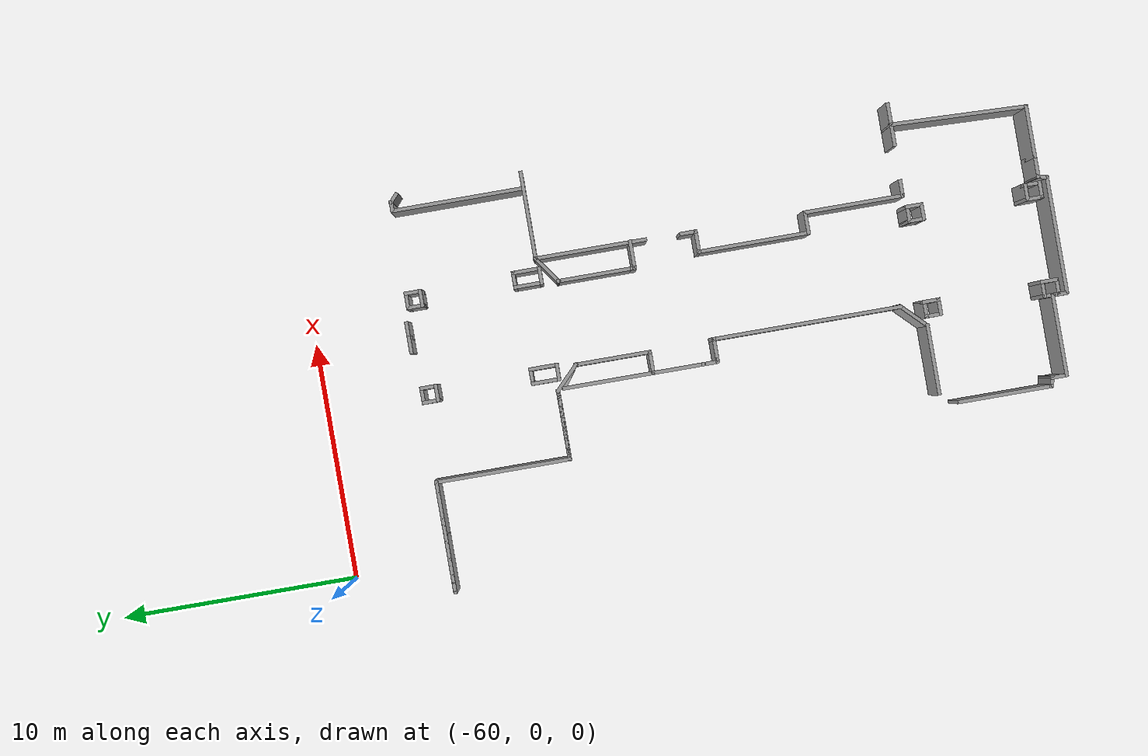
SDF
<sdf version="1.7">
 <model name="TD_n1">
  <pose>-6.74052 -9.30399 0 0 -0 0</pose>
  <link name="Wall_0">
   <collision name="Wall_0_Collision">
    <geometry><box><size>4.75 0.15 2.5</size></box></geometry>
    <pose>0 0 1.25 0 -0 0</pose>
   </collision>
   <visual name="Wall_0_Visual">
    <pose>0 0 1.25 0 -0 0</pose>
    <geometry><box><size>4.75 0.15 2.5</size></box></geometry>
    <material>
     <script><uri>file://media/materials/scripts/gazebo.material</uri><name>Gazebo/Grey</name></script>
     <ambient>1 1 1 1</ambient>
    </material>
    <meta><layer>0</layer></meta>
   </visual>
   <pose>-41.3567 -2.77844 0 0 -0 -1.5708</pose>
  </link>
  <link name="Wall_10">
   <collision name="Wall_10_Collision">
    <geometry><box><size>1 0.15 2.5</size></box></geometry>
    <pose>0 0 1.25 0 -0 0</pose>
   </collision>
   <visual name="Wall_10_Visual">
    <pose>0 0 1.25 0 -0 0</pose>
    <geometry><box><size>1 0.15 2.5</size></box></geometry>
    <material>
     <script><uri>file://media/materials/scripts/gazebo.material</uri><name>Gazebo/Grey</name></script>
     <ambient>1 1 1 1</ambient>
    </material>
    <meta><layer>0</layer></meta>
   </visual>
   <pose>-38.8303 -15.9332 0 0 -0 0</pose>
  </link>
  <link name="Wall_100">
   <collision name="Wall_100_Collision">
    <geometry><box><size>0.5 0.15 2.5</size></box></geometry>
    <pose>0 0 1.25 0 -0 0</pose>
   </collision>
   <visual name="Wall_100_Visual">
    <pose>0 0 1.25 0 -0 0</pose>
    <geometry><box><size>0.5 0.15 2.5</size></box></geometry>
    <material>
     <script><uri>file://media/materials/scripts/gazebo.material</uri><name>Gazebo/Grey</name></script>
     <ambient>1 1 1 1</ambient>
    </material>
    <meta><layer>0</layer></meta>
   </visual>
   <pose>-41.6133 -21.735 0 0 -0 1.309</pose>
  </link>
  <link name="Wall_101">
   <collision name="Wall_101_Collision">
    <geometry><box><size>1 0.15 2.5</size></box></geometry>
    <pose>0 0 1.25 0 -0 0</pose>
   </collision>
   <visual name="Wall_101_Visual">
    <pose>0 0 1.25 0 -0 0</pose>
    <geometry><box><size>1 0.15 2.5</size></box></geometry>
    <material>
     <script><uri>file://media/materials/scripts/gazebo.material</uri><name>Gazebo/Grey</name></script>
     <ambient>1 1 1 1</ambient>
    </material>
    <meta><layer>0</layer></meta>
   </visual>
   <pose>-41.143 -21.5659 0 0 -0 0</pose>
  </link>
  <link name="Wall_103">
   <collision name="Wall_103_Collision">
    <geometry><box><size>2.25 0.15 2.5</size></box></geometry>
    <pose>0 0 1.25 0 -0 0</pose>
   </collision>
   <visual name="Wall_103_Visual">
    <pose>0 0 1.25 0 -0 0</pose>
    <geometry><box><size>2.25 0.15 2.5</size></box></geometry>
    <material>
     <script><uri>file://media/materials/scripts/gazebo.material</uri><name>Gazebo/Grey</name></script>
     <ambient>1 1 1 1</ambient>
    </material>
    <meta><layer>0</layer></meta>
   </visual>
   <pose>-39.668 -21.5659 0 0 -0 0</pose>
  </link>
  <link name="Wall_104">
   <collision name="Wall_104_Collision">
    <geometry><box><size>5.78677 0.15 2.5</size></box></geometry>
    <pose>0 0 1.25 0 -0 0</pose>
   </collision>
   <visual name="Wall_104_Visual">
    <pose>0 0 1.25 0 -0 0</pose>
    <geometry><box><size>5.78677 0.15 2.5</size></box></geometry>
    <material>
     <script><uri>file://media/materials/scripts/gazebo.material</uri><name>Gazebo/Grey</name></script>
     <ambient>1 1 1 1</ambient>
    </material>
    <meta><layer>0</layer></meta>
   </visual>
   <pose>-38.5116 -18.7495 0 0 -0 1.53305</pose>
  </link>
  <link name="Wall_106">
   <collision name="Wall_106_Collision">
    <geometry><box><size>3 0.15 2.5</size></box></geometry>
    <pose>0 0 1.25 0 -0 0</pose>
   </collision>
   <visual name="Wall_106_Visual">
    <pose>0 0 1.25 0 -0 0</pose>
    <geometry><box><size>3 0.15 2.5</size></box></geometry>
    <material>
     <script><uri>file://media/materials/scripts/gazebo.material</uri><name>Gazebo/Grey</name></script>
     <ambient>1 1 1 1</ambient>
    </material>
    <meta><layer>0</layer></meta>
   </visual>
   <pose>-48.3458 -0.459621 0 0 -0 3.14159</pose>
  </link>
  <link name="Wall_107">
   <collision name="Wall_107_Collision">
    <geometry><box><size>5.75 0.15 2.5</size></box></geometry>
    <pose>0 0 1.25 0 -0 0</pose>
   </collision>
   <visual name="Wall_107_Visual">
    <pose>0 0 1.25 0 -0 0</pose>
    <geometry><box><size>5.75 0.15 2.5</size></box></geometry>
    <material>
     <script><uri>file://media/materials/scripts/gazebo.material</uri><name>Gazebo/Grey</name></script>
     <ambient>1 1 1 1</ambient>
    </material>
    <meta><layer>0</layer></meta>
   </visual>
   <pose>-49.7708 2.34038 0 0 -0 1.5708</pose>
  </link>
  <link name="Wall_108">
   <collision name="Wall_108_Collision">
    <geometry><box><size>4.75 0.15 2.5</size></box></geometry>
    <pose>0 0 1.25 0 -0 0</pose>
   </collision>
   <visual name="Wall_108_Visual">
    <pose>0 0 1.25 0 -0 0</pose>
    <geometry><box><size>4.75 0.15 2.5</size></box></geometry>
    <material>
     <script><uri>file://media/materials/scripts/gazebo.material</uri><name>Gazebo/Grey</name></script>
     <ambient>1 1 1 1</ambient>
    </material>
    <meta><layer>0</layer></meta>
   </visual>
   <pose>-52.0708 5.14038 0 0 -0 3.14159</pose>
  </link>
  <link name="Wall_11">
   <collision name="Wall_11_Collision">
    <geometry><box><size>1 0.15 2.5</size></box></geometry>
    <pose>0 0 1.25 0 -0 0</pose>
   </collision>
   <visual name="Wall_11_Visual">
    <pose>0 0 1.25 0 -0 0</pose>
    <geometry><box><size>1 0.15 2.5</size></box></geometry>
    <material>
     <script><uri>file://media/materials/scripts/gazebo.material</uri><name>Gazebo/Grey</name></script>
     <ambient>1 1 1 1</ambient>
    </material>
    <meta><layer>0</layer></meta>
   </visual>
   <pose>-37.9803 -15.9332 0 0 -0 0</pose>
  </link>
  <link name="Wall_111">
   <collision name="Wall_111_Collision">
    <geometry><box><size>4.75 0.15 2.5</size></box></geometry>
    <pose>0 0 1.25 0 -0 0</pose>
   </collision>
   <visual name="Wall_111_Visual">
    <pose>0 0 1.25 0 -0 0</pose>
    <geometry><box><size>4.75 0.15 2.5</size></box></geometry>
    <material>
     <script><uri>file://media/materials/scripts/gazebo.material</uri><name>Gazebo/Grey</name></script>
     <ambient>1 1 1 1</ambient>
    </material>
    <meta><layer>0</layer></meta>
   </visual>
   <pose>-52.0708 5.14038 0 0 -0 0</pose>
  </link>
  <link name="Wall_132">
   <collision name="Wall_132_Collision">
    <geometry><box><size>5.5 0.15 2.5</size></box></geometry>
    <pose>0 0 1.25 0 -0 0</pose>
   </collision>
   <visual name="Wall_132_Visual">
    <pose>0 0 1.25 0 -0 0</pose>
    <geometry><box><size>5.5 0.15 2.5</size></box></geometry>
    <material>
     <script><uri>file://media/materials/scripts/gazebo.material</uri><name>Gazebo/Grey</name></script>
     <ambient>1 1 1 1</ambient>
    </material>
    <meta><layer>0</layer></meta>
   </visual>
   <pose>-38.4036 2.3442 0 0 -0 1.5708</pose>
  </link>
  <link name="Wall_133">
   <collision name="Wall_133_Collision">
    <geometry><box><size>0.5 0.15 2.5</size></box></geometry>
    <pose>0 0 1.25 0 -0 0</pose>
   </collision>
   <visual name="Wall_133_Visual">
    <pose>0 0 1.25 0 -0 0</pose>
    <geometry><box><size>0.5 0.15 2.5</size></box></geometry>
    <material>
     <script><uri>file://media/materials/scripts/gazebo.material</uri><name>Gazebo/Grey</name></script>
     <ambient>1 1 1 1</ambient>
    </material>
    <meta><layer>0</layer></meta>
   </visual>
   <pose>-38.2286 5.0192 0 0 -0 0</pose>
  </link>
  <link name="Wall_134">
   <collision name="Wall_134_Collision">
    <geometry><box><size>0.546055 0.15 2.5</size></box></geometry>
    <pose>0 0 1.25 0 -0 0</pose>
   </collision>
   <visual name="Wall_134_Visual">
    <pose>0 0 1.25 0 -0 0</pose>
    <geometry><box><size>0.546055 0.15 2.5</size></box></geometry>
    <material>
     <script><uri>file://media/materials/scripts/gazebo.material</uri><name>Gazebo/Grey</name></script>
     <ambient>1 1 1 1</ambient>
    </material>
    <meta><layer>0</layer></meta>
   </visual>
   <pose>-37.9048 4.88857 0 0 -0 -0.720381</pose>
  </link>
  <link name="Wall_136">
   <collision name="Wall_136_Collision">
    <geometry><box><size>0.75 0.15 2.5</size></box></geometry>
    <pose>0 0 1.25 0 -0 0</pose>
   </collision>
   <visual name="Wall_136_Visual">
    <pose>0 0 1.25 0 -0 0</pose>
    <geometry><box><size>0.75 0.15 2.5</size></box></geometry>
    <material>
     <script><uri>file://media/materials/scripts/gazebo.material</uri><name>Gazebo/Grey</name></script>
     <ambient>1 1 1 1</ambient>
    </material>
    <meta><layer>0</layer></meta>
   </visual>
   <pose>-43.9857 5.24413 0 0 -0 0</pose>
  </link>
  <link name="Wall_137">
   <collision name="Wall_137_Collision">
    <geometry><box><size>0.75 0.15 2.5</size></box></geometry>
    <pose>0 0 1.25 0 -0 0</pose>
   </collision>
   <visual name="Wall_137_Visual">
    <pose>0 0 1.25 0 -0 0</pose>
    <geometry><box><size>0.75 0.15 2.5</size></box></geometry>
    <material>
     <script><uri>file://media/materials/scripts/gazebo.material</uri><name>Gazebo/Grey</name></script>
     <ambient>1 1 1 1</ambient>
    </material>
    <meta><layer>0</layer></meta>
   </visual>
   <pose>-43.3857 5.24413 0 0 -0 0</pose>
  </link>
  <link name="Wall_2">
   <collision name="Wall_2_Collision">
    <geometry><box><size>0.75 0.15 2.5</size></box></geometry>
    <pose>0 0 1.25 0 -0 0</pose>
   </collision>
   <visual name="Wall_2_Visual">
    <pose>0 0 1.25 0 -0 0</pose>
    <geometry><box><size>0.75 0.15 2.5</size></box></geometry>
    <material>
     <script><uri>file://media/materials/scripts/gazebo.material</uri><name>Gazebo/Grey</name></script>
     <ambient>1 1 1 1</ambient>
    </material>
    <meta><layer>0</layer></meta>
   </visual>
   <pose>-41.3833 -6.89649 0 0 -0 -1.5708</pose>
  </link>
  <link name="Wall_214">
   <collision name="Wall_214_Collision">
    <geometry><box><size>0.75 0.15 2.5</size></box></geometry>
    <pose>0 0 1.25 0 -0 0</pose>
   </collision>
   <visual name="Wall_214_Visual">
    <pose>0 0 1.25 0 -0 0</pose>
    <geometry><box><size>0.75 0.15 2.5</size></box></geometry>
    <material>
     <script><uri>file://media/materials/scripts/gazebo.material</uri><name>Gazebo/Grey</name></script>
     <ambient>1 1 1 1</ambient>
    </material>
    <meta><layer>0</layer></meta>
   </visual>
   <pose>-46.4455 4.79139 0 0 -0 -1.5708</pose>
  </link>
  <link name="Wall_215">
   <collision name="Wall_215_Collision">
    <geometry><box><size>0.75 0.15 2.5</size></box></geometry>
    <pose>0 0 1.25 0 -0 0</pose>
   </collision>
   <visual name="Wall_215_Visual">
    <pose>0 0 1.25 0 -0 0</pose>
    <geometry><box><size>0.75 0.15 2.5</size></box></geometry>
    <material>
     <script><uri>file://media/materials/scripts/gazebo.material</uri><name>Gazebo/Grey</name></script>
     <ambient>1 1 1 1</ambient>
    </material>
    <meta><layer>0</layer></meta>
   </visual>
   <pose>-46.1455 4.49139 0 0 -0 0</pose>
  </link>
  <link name="Wall_216">
   <collision name="Wall_216_Collision">
    <geometry><box><size>0.75 0.15 2.5</size></box></geometry>
    <pose>0 0 1.25 0 -0 0</pose>
   </collision>
   <visual name="Wall_216_Visual">
    <pose>0 0 1.25 0 -0 0</pose>
    <geometry><box><size>0.75 0.15 2.5</size></box></geometry>
    <material>
     <script><uri>file://media/materials/scripts/gazebo.material</uri><name>Gazebo/Grey</name></script>
     <ambient>1 1 1 1</ambient>
    </material>
    <meta><layer>0</layer></meta>
   </visual>
   <pose>-45.8455 4.79139 0 0 -0 1.5708</pose>
  </link>
  <link name="Wall_217">
   <collision name="Wall_217_Collision">
    <geometry><box><size>0.75 0.15 2.5</size></box></geometry>
    <pose>0 0 1.25 0 -0 0</pose>
   </collision>
   <visual name="Wall_217_Visual">
    <pose>0 0 1.25 0 -0 0</pose>
    <geometry><box><size>0.75 0.15 2.5</size></box></geometry>
    <material>
     <script><uri>file://media/materials/scripts/gazebo.material</uri><name>Gazebo/Grey</name></script>
     <ambient>1 1 1 1</ambient>
    </material>
    <meta><layer>0</layer></meta>
   </visual>
   <pose>-46.1455 5.09139 0 0 -0 3.14159</pose>
  </link>
  <link name="Wall_219">
   <collision name="Wall_219_Collision">
    <geometry><box><size>0.75 0.15 2.5</size></box></geometry>
    <pose>0 0 1.25 0 -0 0</pose>
   </collision>
   <visual name="Wall_219_Visual">
    <pose>0 0 1.25 0 -0 0</pose>
    <geometry><box><size>0.75 0.15 2.5</size></box></geometry>
    <material>
     <script><uri>file://media/materials/scripts/gazebo.material</uri><name>Gazebo/Grey</name></script>
     <ambient>1 1 1 1</ambient>
    </material>
    <meta><layer>0</layer></meta>
   </visual>
   <pose>-42.4682 4.76115 0 0 -0 -1.5708</pose>
  </link>
  <link name="Wall_220">
   <collision name="Wall_220_Collision">
    <geometry><box><size>0.75 0.15 2.5</size></box></geometry>
    <pose>0 0 1.25 0 -0 0</pose>
   </collision>
   <visual name="Wall_220_Visual">
    <pose>0 0 1.25 0 -0 0</pose>
    <geometry><box><size>0.75 0.15 2.5</size></box></geometry>
    <material>
     <script><uri>file://media/materials/scripts/gazebo.material</uri><name>Gazebo/Grey</name></script>
     <ambient>1 1 1 1</ambient>
    </material>
    <meta><layer>0</layer></meta>
   </visual>
   <pose>-42.1682 4.46115 0 0 -0 0</pose>
  </link>
  <link name="Wall_221">
   <collision name="Wall_221_Collision">
    <geometry><box><size>0.75 0.15 2.5</size></box></geometry>
    <pose>0 0 1.25 0 -0 0</pose>
   </collision>
   <visual name="Wall_221_Visual">
    <pose>0 0 1.25 0 -0 0</pose>
    <geometry><box><size>0.75 0.15 2.5</size></box></geometry>
    <material>
     <script><uri>file://media/materials/scripts/gazebo.material</uri><name>Gazebo/Grey</name></script>
     <ambient>1 1 1 1</ambient>
    </material>
    <meta><layer>0</layer></meta>
   </visual>
   <pose>-41.8682 4.76115 0 0 -0 1.5708</pose>
  </link>
  <link name="Wall_222">
   <collision name="Wall_222_Collision">
    <geometry><box><size>0.75 0.15 2.5</size></box></geometry>
    <pose>0 0 1.25 0 -0 0</pose>
   </collision>
   <visual name="Wall_222_Visual">
    <pose>0 0 1.25 0 -0 0</pose>
    <geometry><box><size>0.75 0.15 2.5</size></box></geometry>
    <material>
     <script><uri>file://media/materials/scripts/gazebo.material</uri><name>Gazebo/Grey</name></script>
     <ambient>1 1 1 1</ambient>
    </material>
    <meta><layer>0</layer></meta>
   </visual>
   <pose>-42.1682 5.06115 0 0 -0 3.14159</pose>
  </link>
  <link name="Wall_3">
   <collision name="Wall_3_Collision">
    <geometry><box><size>1 0.15 2.5</size></box></geometry>
    <pose>0 0 1.25 0 -0 0</pose>
   </collision>
   <visual name="Wall_3_Visual">
    <pose>0 0 1.25 0 -0 0</pose>
    <geometry><box><size>1 0.15 2.5</size></box></geometry>
    <material>
     <script><uri>file://media/materials/scripts/gazebo.material</uri><name>Gazebo/Grey</name></script>
     <ambient>1 1 1 1</ambient>
    </material>
    <meta><layer>0</layer></meta>
   </visual>
   <pose>-41.8083 -7.19649 0 0 -0 3.14159</pose>
  </link>
  <link name="Wall_31">
   <collision name="Wall_31_Collision">
    <geometry><box><size>3.75 0.15 2.5</size></box></geometry>
    <pose>0 0 1.25 0 -0 0</pose>
   </collision>
   <visual name="Wall_31_Visual">
    <pose>0 0 1.25 0 -0 0</pose>
    <geometry><box><size>3.75 0.15 2.5</size></box></geometry>
    <material>
     <script><uri>file://media/materials/scripts/gazebo.material</uri><name>Gazebo/Grey</name></script>
     <ambient>1 1 1 1</ambient>
    </material>
    <meta><layer>0</layer></meta>
   </visual>
   <pose>-39.5567 -0.478441 0 0 -0 0</pose>
  </link>
  <link name="Wall_4">
   <collision name="Wall_4_Collision">
    <geometry><box><size>4.75 0.15 2.5</size></box></geometry>
    <pose>0 0 1.25 0 -0 0</pose>
   </collision>
   <visual name="Wall_4_Visual">
    <pose>0 0 1.25 0 -0 0</pose>
    <geometry><box><size>4.75 0.15 2.5</size></box></geometry>
    <material>
     <script><uri>file://media/materials/scripts/gazebo.material</uri><name>Gazebo/Grey</name></script>
     <ambient>1 1 1 1</ambient>
    </material>
    <meta><layer>0</layer></meta>
   </visual>
   <pose>-42.2333 -9.49649 0 0 -0 -1.5708</pose>
  </link>
  <link name="Wall_41">
   <collision name="Wall_41_Collision">
    <geometry><box><size>0.75 0.15 2.5</size></box></geometry>
    <pose>0 0 1.25 0 -0 0</pose>
   </collision>
   <visual name="Wall_41_Visual">
    <pose>0 0 1.25 0 -0 0</pose>
    <geometry><box><size>0.75 0.15 2.5</size></box></geometry>
    <material>
     <script><uri>file://media/materials/scripts/gazebo.material</uri><name>Gazebo/Grey</name></script>
     <ambient>1 1 1 1</ambient>
    </material>
    <meta><layer>0</layer></meta>
   </visual>
   <pose>-42.4753 -16.298 0 0 -0 -1.5708</pose>
  </link>
  <link name="Wall_42">
   <collision name="Wall_42_Collision">
    <geometry><box><size>0.75 0.15 2.5</size></box></geometry>
    <pose>0 0 1.25 0 -0 0</pose>
   </collision>
   <visual name="Wall_42_Visual">
    <pose>0 0 1.25 0 -0 0</pose>
    <geometry><box><size>0.75 0.15 2.5</size></box></geometry>
    <material>
     <script><uri>file://media/materials/scripts/gazebo.material</uri><name>Gazebo/Grey</name></script>
     <ambient>1 1 1 1</ambient>
    </material>
    <meta><layer>0</layer></meta>
   </visual>
   <pose>-42.1754 -16.598 0 0 -0 0</pose>
  </link>
  <link name="Wall_43">
   <collision name="Wall_43_Collision">
    <geometry><box><size>0.75 0.15 2.5</size></box></geometry>
    <pose>0 0 1.25 0 -0 0</pose>
   </collision>
   <visual name="Wall_43_Visual">
    <pose>0 0 1.25 0 -0 0</pose>
    <geometry><box><size>0.75 0.15 2.5</size></box></geometry>
    <material>
     <script><uri>file://media/materials/scripts/gazebo.material</uri><name>Gazebo/Grey</name></script>
     <ambient>1 1 1 1</ambient>
    </material>
    <meta><layer>0</layer></meta>
   </visual>
   <pose>-41.8753 -16.298 0 0 -0 1.5708</pose>
  </link>
  <link name="Wall_44">
   <collision name="Wall_44_Collision">
    <geometry><box><size>0.75 0.15 2.5</size></box></geometry>
    <pose>0 0 1.25 0 -0 0</pose>
   </collision>
   <visual name="Wall_44_Visual">
    <pose>0 0 1.25 0 -0 0</pose>
    <geometry><box><size>0.75 0.15 2.5</size></box></geometry>
    <material>
     <script><uri>file://media/materials/scripts/gazebo.material</uri><name>Gazebo/Grey</name></script>
     <ambient>1 1 1 1</ambient>
    </material>
    <meta><layer>0</layer></meta>
   </visual>
   <pose>-42.1754 -15.998 0 0 -0 3.14159</pose>
  </link>
  <link name="Wall_46">
   <collision name="Wall_46_Collision">
    <geometry><box><size>0.75 0.15 2.5</size></box></geometry>
    <pose>0 0 1.25 0 -0 0</pose>
   </collision>
   <visual name="Wall_46_Visual">
    <pose>0 0 1.25 0 -0 0</pose>
    <geometry><box><size>0.75 0.15 2.5</size></box></geometry>
    <material>
     <script><uri>file://media/materials/scripts/gazebo.material</uri><name>Gazebo/Grey</name></script>
     <ambient>1 1 1 1</ambient>
    </material>
    <meta><layer>0</layer></meta>
   </visual>
   <pose>-46.4753 -16.3133 0 0 -0 -1.5708</pose>
  </link>
  <link name="Wall_47">
   <collision name="Wall_47_Collision">
    <geometry><box><size>0.75 0.15 2.5</size></box></geometry>
    <pose>0 0 1.25 0 -0 0</pose>
   </collision>
   <visual name="Wall_47_Visual">
    <pose>0 0 1.25 0 -0 0</pose>
    <geometry><box><size>0.75 0.15 2.5</size></box></geometry>
    <material>
     <script><uri>file://media/materials/scripts/gazebo.material</uri><name>Gazebo/Grey</name></script>
     <ambient>1 1 1 1</ambient>
    </material>
    <meta><layer>0</layer></meta>
   </visual>
   <pose>-46.1753 -16.6133 0 0 -0 0</pose>
  </link>
  <link name="Wall_48">
   <collision name="Wall_48_Collision">
    <geometry><box><size>0.75 0.15 2.5</size></box></geometry>
    <pose>0 0 1.25 0 -0 0</pose>
   </collision>
   <visual name="Wall_48_Visual">
    <pose>0 0 1.25 0 -0 0</pose>
    <geometry><box><size>0.75 0.15 2.5</size></box></geometry>
    <material>
     <script><uri>file://media/materials/scripts/gazebo.material</uri><name>Gazebo/Grey</name></script>
     <ambient>1 1 1 1</ambient>
    </material>
    <meta><layer>0</layer></meta>
   </visual>
   <pose>-45.8753 -16.3133 0 0 -0 1.5708</pose>
  </link>
  <link name="Wall_49">
   <collision name="Wall_49_Collision">
    <geometry><box><size>0.75 0.15 2.5</size></box></geometry>
    <pose>0 0 1.25 0 -0 0</pose>
   </collision>
   <visual name="Wall_49_Visual">
    <pose>0 0 1.25 0 -0 0</pose>
    <geometry><box><size>0.75 0.15 2.5</size></box></geometry>
    <material>
     <script><uri>file://media/materials/scripts/gazebo.material</uri><name>Gazebo/Grey</name></script>
     <ambient>1 1 1 1</ambient>
    </material>
    <meta><layer>0</layer></meta>
   </visual>
   <pose>-46.1753 -16.0133 0 0 -0 3.14159</pose>
  </link>
  <link name="Wall_51">
   <collision name="Wall_51_Collision">
    <geometry><box><size>0.75 0.15 2.5</size></box></geometry>
    <pose>0 0 1.25 0 -0 0</pose>
   </collision>
   <visual name="Wall_51_Visual">
    <pose>0 0 1.25 0 -0 0</pose>
    <geometry><box><size>0.75 0.15 2.5</size></box></geometry>
    <material>
     <script><uri>file://media/materials/scripts/gazebo.material</uri><name>Gazebo/Grey</name></script>
     <ambient>1 1 1 1</ambient>
    </material>
    <meta><layer>0</layer></meta>
   </visual>
   <pose>-42.4214 -21.2695 0 0 -0 -1.5708</pose>
  </link>
  <link name="Wall_52">
   <collision name="Wall_52_Collision">
    <geometry><box><size>0.75 0.15 2.5</size></box></geometry>
    <pose>0 0 1.25 0 -0 0</pose>
   </collision>
   <visual name="Wall_52_Visual">
    <pose>0 0 1.25 0 -0 0</pose>
    <geometry><box><size>0.75 0.15 2.5</size></box></geometry>
    <material>
     <script><uri>file://media/materials/scripts/gazebo.material</uri><name>Gazebo/Grey</name></script>
     <ambient>1 1 1 1</ambient>
    </material>
    <meta><layer>0</layer></meta>
   </visual>
   <pose>-42.1214 -21.5695 0 0 -0 0</pose>
  </link>
  <link name="Wall_53">
   <collision name="Wall_53_Collision">
    <geometry><box><size>0.75 0.15 2.5</size></box></geometry>
    <pose>0 0 1.25 0 -0 0</pose>
   </collision>
   <visual name="Wall_53_Visual">
    <pose>0 0 1.25 0 -0 0</pose>
    <geometry><box><size>0.75 0.15 2.5</size></box></geometry>
    <material>
     <script><uri>file://media/materials/scripts/gazebo.material</uri><name>Gazebo/Grey</name></script>
     <ambient>1 1 1 1</ambient>
    </material>
    <meta><layer>0</layer></meta>
   </visual>
   <pose>-41.8214 -21.2695 0 0 -0 1.5708</pose>
  </link>
  <link name="Wall_54">
   <collision name="Wall_54_Collision">
    <geometry><box><size>0.75 0.15 2.5</size></box></geometry>
    <pose>0 0 1.25 0 -0 0</pose>
   </collision>
   <visual name="Wall_54_Visual">
    <pose>0 0 1.25 0 -0 0</pose>
    <geometry><box><size>0.75 0.15 2.5</size></box></geometry>
    <material>
     <script><uri>file://media/materials/scripts/gazebo.material</uri><name>Gazebo/Grey</name></script>
     <ambient>1 1 1 1</ambient>
    </material>
    <meta><layer>0</layer></meta>
   </visual>
   <pose>-42.1214 -20.9695 0 0 -0 3.14159</pose>
  </link>
  <link name="Wall_56">
   <collision name="Wall_56_Collision">
    <geometry><box><size>0.75 0.15 2.5</size></box></geometry>
    <pose>0 0 1.25 0 -0 0</pose>
   </collision>
   <visual name="Wall_56_Visual">
    <pose>0 0 1.25 0 -0 0</pose>
    <geometry><box><size>0.75 0.15 2.5</size></box></geometry>
    <material>
     <script><uri>file://media/materials/scripts/gazebo.material</uri><name>Gazebo/Grey</name></script>
     <ambient>1 1 1 1</ambient>
    </material>
    <meta><layer>0</layer></meta>
   </visual>
   <pose>-46.491 -21.2695 0 0 -0 -1.5708</pose>
  </link>
  <link name="Wall_57">
   <collision name="Wall_57_Collision">
    <geometry><box><size>0.75 0.15 2.5</size></box></geometry>
    <pose>0 0 1.25 0 -0 0</pose>
   </collision>
   <visual name="Wall_57_Visual">
    <pose>0 0 1.25 0 -0 0</pose>
    <geometry><box><size>0.75 0.15 2.5</size></box></geometry>
    <material>
     <script><uri>file://media/materials/scripts/gazebo.material</uri><name>Gazebo/Grey</name></script>
     <ambient>1 1 1 1</ambient>
    </material>
    <meta><layer>0</layer></meta>
   </visual>
   <pose>-46.191 -21.5695 0 0 -0 0</pose>
  </link>
  <link name="Wall_58">
   <collision name="Wall_58_Collision">
    <geometry><box><size>0.75 0.15 2.5</size></box></geometry>
    <pose>0 0 1.25 0 -0 0</pose>
   </collision>
   <visual name="Wall_58_Visual">
    <pose>0 0 1.25 0 -0 0</pose>
    <geometry><box><size>0.75 0.15 2.5</size></box></geometry>
    <material>
     <script><uri>file://media/materials/scripts/gazebo.material</uri><name>Gazebo/Grey</name></script>
     <ambient>1 1 1 1</ambient>
    </material>
    <meta><layer>0</layer></meta>
   </visual>
   <pose>-45.891 -21.2695 0 0 -0 1.5708</pose>
  </link>
  <link name="Wall_59">
   <collision name="Wall_59_Collision">
    <geometry><box><size>0.75 0.15 2.5</size></box></geometry>
    <pose>0 0 1.25 0 -0 0</pose>
   </collision>
   <visual name="Wall_59_Visual">
    <pose>0 0 1.25 0 -0 0</pose>
    <geometry><box><size>0.75 0.15 2.5</size></box></geometry>
    <material>
     <script><uri>file://media/materials/scripts/gazebo.material</uri><name>Gazebo/Grey</name></script>
     <ambient>1 1 1 1</ambient>
    </material>
    <meta><layer>0</layer></meta>
   </visual>
   <pose>-46.191 -20.9695 0 0 -0 3.14159</pose>
  </link>
  <link name="Wall_6">
   <collision name="Wall_6_Collision">
    <geometry><box><size>1 0.15 2.5</size></box></geometry>
    <pose>0 0 1.25 0 -0 0</pose>
   </collision>
   <visual name="Wall_6_Visual">
    <pose>0 0 1.25 0 -0 0</pose>
    <geometry><box><size>1 0.15 2.5</size></box></geometry>
    <material>
     <script><uri>file://media/materials/scripts/gazebo.material</uri><name>Gazebo/Grey</name></script>
     <ambient>1 1 1 1</ambient>
    </material>
    <meta><layer>0</layer></meta>
   </visual>
   <pose>-41.8083 -11.7965 0 0 -0 0</pose>
  </link>
  <link name="Wall_61">
   <collision name="Wall_61_Collision">
    <geometry><box><size>1.25 0.15 2.5</size></box></geometry>
    <pose>0 0 1.25 0 -0 0</pose>
   </collision>
   <visual name="Wall_61_Visual">
    <pose>0 0 1.25 0 -0 0</pose>
    <geometry><box><size>1.25 0.15 2.5</size></box></geometry>
    <material>
     <script><uri>file://media/materials/scripts/gazebo.material</uri><name>Gazebo/Grey</name></script>
     <ambient>1 1 1 1</ambient>
    </material>
    <meta><layer>0</layer></meta>
   </visual>
   <pose>-42.3866 -0.006445 0 0 -0 -1.5708</pose>
  </link>
  <link name="Wall_62">
   <collision name="Wall_62_Collision">
    <geometry><box><size>0.75 0.15 2.5</size></box></geometry>
    <pose>0 0 1.25 0 -0 0</pose>
   </collision>
   <visual name="Wall_62_Visual">
    <pose>0 0 1.25 0 -0 0</pose>
    <geometry><box><size>0.75 0.15 2.5</size></box></geometry>
    <material>
     <script><uri>file://media/materials/scripts/gazebo.material</uri><name>Gazebo/Grey</name></script>
     <ambient>1 1 1 1</ambient>
    </material>
    <meta><layer>0</layer></meta>
   </visual>
   <pose>-42.0866 -0.556445 0 0 -0 0</pose>
  </link>
  <link name="Wall_63">
   <collision name="Wall_63_Collision">
    <geometry><box><size>1.25 0.15 2.5</size></box></geometry>
    <pose>0 0 1.25 0 -0 0</pose>
   </collision>
   <visual name="Wall_63_Visual">
    <pose>0 0 1.25 0 -0 0</pose>
    <geometry><box><size>1.25 0.15 2.5</size></box></geometry>
    <material>
     <script><uri>file://media/materials/scripts/gazebo.material</uri><name>Gazebo/Grey</name></script>
     <ambient>1 1 1 1</ambient>
    </material>
    <meta><layer>0</layer></meta>
   </visual>
   <pose>-41.7866 -0.006445 0 0 -0 1.5708</pose>
  </link>
  <link name="Wall_64">
   <collision name="Wall_64_Collision">
    <geometry><box><size>0.75 0.15 2.5</size></box></geometry>
    <pose>0 0 1.25 0 -0 0</pose>
   </collision>
   <visual name="Wall_64_Visual">
    <pose>0 0 1.25 0 -0 0</pose>
    <geometry><box><size>0.75 0.15 2.5</size></box></geometry>
    <material>
     <script><uri>file://media/materials/scripts/gazebo.material</uri><name>Gazebo/Grey</name></script>
     <ambient>1 1 1 1</ambient>
    </material>
    <meta><layer>0</layer></meta>
   </visual>
   <pose>-42.0866 0.543555 0 0 -0 3.14159</pose>
  </link>
  <link name="Wall_66">
   <collision name="Wall_66_Collision">
    <geometry><box><size>1.25 0.15 2.5</size></box></geometry>
    <pose>0 0 1.25 0 -0 0</pose>
   </collision>
   <visual name="Wall_66_Visual">
    <pose>0 0 1.25 0 -0 0</pose>
    <geometry><box><size>1.25 0.15 2.5</size></box></geometry>
    <material>
     <script><uri>file://media/materials/scripts/gazebo.material</uri><name>Gazebo/Grey</name></script>
     <ambient>1 1 1 1</ambient>
    </material>
    <meta><layer>0</layer></meta>
   </visual>
   <pose>-46.4388 -0.041227 0 0 -0 -1.5708</pose>
  </link>
  <link name="Wall_67">
   <collision name="Wall_67_Collision">
    <geometry><box><size>0.75 0.15 2.5</size></box></geometry>
    <pose>0 0 1.25 0 -0 0</pose>
   </collision>
   <visual name="Wall_67_Visual">
    <pose>0 0 1.25 0 -0 0</pose>
    <geometry><box><size>0.75 0.15 2.5</size></box></geometry>
    <material>
     <script><uri>file://media/materials/scripts/gazebo.material</uri><name>Gazebo/Grey</name></script>
     <ambient>1 1 1 1</ambient>
    </material>
    <meta><layer>0</layer></meta>
   </visual>
   <pose>-46.1388 -0.591228 0 0 -0 0</pose>
  </link>
  <link name="Wall_68">
   <collision name="Wall_68_Collision">
    <geometry><box><size>1.25 0.15 2.5</size></box></geometry>
    <pose>0 0 1.25 0 -0 0</pose>
   </collision>
   <visual name="Wall_68_Visual">
    <pose>0 0 1.25 0 -0 0</pose>
    <geometry><box><size>1.25 0.15 2.5</size></box></geometry>
    <material>
     <script><uri>file://media/materials/scripts/gazebo.material</uri><name>Gazebo/Grey</name></script>
     <ambient>1 1 1 1</ambient>
    </material>
    <meta><layer>0</layer></meta>
   </visual>
   <pose>-45.8388 -0.041227 0 0 -0 1.5708</pose>
  </link>
  <link name="Wall_69">
   <collision name="Wall_69_Collision">
    <geometry><box><size>0.75 0.15 2.5</size></box></geometry>
    <pose>0 0 1.25 0 -0 0</pose>
   </collision>
   <visual name="Wall_69_Visual">
    <pose>0 0 1.25 0 -0 0</pose>
    <geometry><box><size>0.75 0.15 2.5</size></box></geometry>
    <material>
     <script><uri>file://media/materials/scripts/gazebo.material</uri><name>Gazebo/Grey</name></script>
     <ambient>1 1 1 1</ambient>
    </material>
    <meta><layer>0</layer></meta>
   </visual>
   <pose>-46.1388 0.508773 0 0 -0 3.14159</pose>
  </link>
  <link name="Wall_7">
   <collision name="Wall_7_Collision">
    <geometry><box><size>4.25 0.15 2.5</size></box></geometry>
    <pose>0 0 1.25 0 -0 0</pose>
   </collision>
   <visual name="Wall_7_Visual">
    <pose>0 0 1.25 0 -0 0</pose>
    <geometry><box><size>4.25 0.15 2.5</size></box></geometry>
    <material>
     <script><uri>file://media/materials/scripts/gazebo.material</uri><name>Gazebo/Grey</name></script>
     <ambient>1 1 1 1</ambient>
    </material>
    <meta><layer>0</layer></meta>
   </visual>
   <pose>-41.3833 -13.8465 0 0 -0 -1.5708</pose>
  </link>
  <link name="Wall_71">
   <collision name="Wall_71_Collision">
    <geometry><box><size>3 0.15 2.5</size></box></geometry>
    <pose>0 0 1.25 0 -0 0</pose>
   </collision>
   <visual name="Wall_71_Visual">
    <pose>0 0 1.25 0 -0 0</pose>
    <geometry><box><size>3 0.15 2.5</size></box></geometry>
    <material>
     <script><uri>file://media/materials/scripts/gazebo.material</uri><name>Gazebo/Grey</name></script>
     <ambient>1 1 1 1</ambient>
    </material>
    <meta><layer>0</layer></meta>
   </visual>
   <pose>-48.2807 -15.983 0 0 -0 0</pose>
  </link>
  <link name="Wall_72">
   <collision name="Wall_72_Collision">
    <geometry><box><size>1.5 0.15 2.5</size></box></geometry>
    <pose>0 0 1.25 0 -0 0</pose>
   </collision>
   <visual name="Wall_72_Visual">
    <pose>0 0 1.25 0 -0 0</pose>
    <geometry><box><size>1.5 0.15 2.5</size></box></geometry>
    <material>
     <script><uri>file://media/materials/scripts/gazebo.material</uri><name>Gazebo/Grey</name></script>
     <ambient>1 1 1 1</ambient>
    </material>
    <meta><layer>0</layer></meta>
   </visual>
   <pose>-46.3784 -15.5057 0 0 -0 0.785398</pose>
  </link>
  <link name="Wall_74">
   <collision name="Wall_74_Collision">
    <geometry><box><size>8 0.15 2.5</size></box></geometry>
    <pose>0 0 1.25 0 -0 0</pose>
   </collision>
   <visual name="Wall_74_Visual">
    <pose>0 0 1.25 0 -0 0</pose>
    <geometry><box><size>8 0.15 2.5</size></box></geometry>
    <material>
     <script><uri>file://media/materials/scripts/gazebo.material</uri><name>Gazebo/Grey</name></script>
     <ambient>1 1 1 1</ambient>
    </material>
    <meta><layer>0</layer></meta>
   </visual>
   <pose>-45.9011 -11.1034 0 0 -0 1.5708</pose>
  </link>
  <link name="Wall_75">
   <collision name="Wall_75_Collision">
    <geometry><box><size>1 0.15 2.5</size></box></geometry>
    <pose>0 0 1.25 0 -0 0</pose>
   </collision>
   <visual name="Wall_75_Visual">
    <pose>0 0 1.25 0 -0 0</pose>
    <geometry><box><size>1 0.15 2.5</size></box></geometry>
    <material>
     <script><uri>file://media/materials/scripts/gazebo.material</uri><name>Gazebo/Grey</name></script>
     <ambient>1 1 1 1</ambient>
    </material>
    <meta><layer>0</layer></meta>
   </visual>
   <pose>-46.3261 -7.17842 0 0 -0 3.14159</pose>
  </link>
  <link name="Wall_76">
   <collision name="Wall_76_Collision">
    <geometry><box><size>0.25 0.15 2.5</size></box></geometry>
    <pose>0 0 1.25 0 -0 0</pose>
   </collision>
   <visual name="Wall_76_Visual">
    <pose>0 0 1.25 0 -0 0</pose>
    <geometry><box><size>0.25 0.15 2.5</size></box></geometry>
    <material>
     <script><uri>file://media/materials/scripts/gazebo.material</uri><name>Gazebo/Grey</name></script>
     <ambient>1 1 1 1</ambient>
    </material>
    <meta><layer>0</layer></meta>
   </visual>
   <pose>-46.8011 -7.17842 0 0 -0 3.14159</pose>
  </link>
  <link name="Wall_77">
   <collision name="Wall_77_Collision">
    <geometry><box><size>0.75 0.15 2.5</size></box></geometry>
    <pose>0 0 1.25 0 -0 0</pose>
   </collision>
   <visual name="Wall_77_Visual">
    <pose>0 0 1.25 0 -0 0</pose>
    <geometry><box><size>0.75 0.15 2.5</size></box></geometry>
    <material>
     <script><uri>file://media/materials/scripts/gazebo.material</uri><name>Gazebo/Grey</name></script>
     <ambient>1 1 1 1</ambient>
    </material>
    <meta><layer>0</layer></meta>
   </visual>
   <pose>-46.8511 -6.87842 0 0 -0 1.5708</pose>
  </link>
  <link name="Wall_79">
   <collision name="Wall_79_Collision">
    <geometry><box><size>6 0.15 2.5</size></box></geometry>
    <pose>0 0 1.25 0 -0 0</pose>
   </collision>
   <visual name="Wall_79_Visual">
    <pose>0 0 1.25 0 -0 0</pose>
    <geometry><box><size>6 0.15 2.5</size></box></geometry>
    <material>
     <script><uri>file://media/materials/scripts/gazebo.material</uri><name>Gazebo/Grey</name></script>
     <ambient>1 1 1 1</ambient>
    </material>
    <meta><layer>0</layer></meta>
   </visual>
   <pose>-46.8511 -3.65342 0 0 -0 1.5708</pose>
  </link>
  <link name="Wall_8">
   <collision name="Wall_8_Collision">
    <geometry><box><size>0.75 0.15 2.5</size></box></geometry>
    <pose>0 0 1.25 0 -0 0</pose>
   </collision>
   <visual name="Wall_8_Visual">
    <pose>0 0 1.25 0 -0 0</pose>
    <geometry><box><size>0.75 0.15 2.5</size></box></geometry>
    <material>
     <script><uri>file://media/materials/scripts/gazebo.material</uri><name>Gazebo/Grey</name></script>
     <ambient>1 1 1 1</ambient>
    </material>
    <meta><layer>0</layer></meta>
   </visual>
   <pose>-41.0833 -15.8965 0 0 -0 0</pose>
  </link>
  <link name="Wall_81">
   <collision name="Wall_81_Collision">
    <geometry><box><size>1 0.15 2.5</size></box></geometry>
    <pose>0 0 1.25 0 -0 0</pose>
   </collision>
   <visual name="Wall_81_Visual">
    <pose>0 0 1.25 0 -0 0</pose>
    <geometry><box><size>1 0.15 2.5</size></box></geometry>
    <material>
     <script><uri>file://media/materials/scripts/gazebo.material</uri><name>Gazebo/Grey</name></script>
     <ambient>1 1 1 1</ambient>
    </material>
    <meta><layer>0</layer></meta>
   </visual>
   <pose>-46.3953 -4.47473 0 0 -0 0</pose>
  </link>
  <link name="Wall_82">
   <collision name="Wall_82_Collision">
    <geometry><box><size>3.25 0.15 2.5</size></box></geometry>
    <pose>0 0 1.25 0 -0 0</pose>
   </collision>
   <visual name="Wall_82_Visual">
    <pose>0 0 1.25 0 -0 0</pose>
    <geometry><box><size>3.25 0.15 2.5</size></box></geometry>
    <material>
     <script><uri>file://media/materials/scripts/gazebo.material</uri><name>Gazebo/Grey</name></script>
     <ambient>1 1 1 1</ambient>
    </material>
    <meta><layer>0</layer></meta>
   </visual>
   <pose>-45.9703 -2.92473 0 0 -0 1.5708</pose>
  </link>
  <link name="Wall_83">
   <collision name="Wall_83_Collision">
    <geometry><box><size>1.24247 0.15 2.5</size></box></geometry>
    <pose>0 0 1.25 0 -0 0</pose>
   </collision>
   <visual name="Wall_83_Visual">
    <pose>0 0 1.25 0 -0 0</pose>
    <geometry><box><size>1.24247 0.15 2.5</size></box></geometry>
    <material>
     <script><uri>file://media/materials/scripts/gazebo.material</uri><name>Gazebo/Grey</name></script>
     <ambient>1 1 1 1</ambient>
    </material>
    <meta><layer>0</layer></meta>
   </visual>
   <pose>-46.4107 -1.05158 0 0 -0 2.50855</pose>
  </link>
  <link name="Wall_85">
   <collision name="Wall_85_Collision">
    <geometry><box><size>3.25 0.15 2.5</size></box></geometry>
    <pose>0 0 1.25 0 -0 0</pose>
   </collision>
   <visual name="Wall_85_Visual">
    <pose>0 0 1.25 0 -0 0</pose>
    <geometry><box><size>3.25 0.15 2.5</size></box></geometry>
    <material>
     <script><uri>file://media/materials/scripts/gazebo.material</uri><name>Gazebo/Grey</name></script>
     <ambient>1 1 1 1</ambient>
    </material>
    <meta><layer>0</layer></meta>
   </visual>
   <pose>-42.4402 -2.80306 0 0 -0 1.5708</pose>
  </link>
  <link name="Wall_86">
   <collision name="Wall_86_Collision">
    <geometry><box><size>1.4819 0.15 2.5</size></box></geometry>
    <pose>0 0 1.25 0 -0 0</pose>
   </collision>
   <visual name="Wall_86_Visual">
    <pose>0 0 1.25 0 -0 0</pose>
    <geometry><box><size>1.4819 0.15 2.5</size></box></geometry>
    <material>
     <script><uri>file://media/materials/scripts/gazebo.material</uri><name>Gazebo/Grey</name></script>
     <ambient>1 1 1 1</ambient>
    </material>
    <meta><layer>0</layer></meta>
   </visual>
   <pose>-41.8984 -0.865751 0 0 -0 0.620681</pose>
  </link>
  <link name="Wall_88">
   <collision name="Wall_88_Collision">
    <geometry><box><size>0.25 0.15 2.5</size></box></geometry>
    <pose>0 0 1.25 0 -0 0</pose>
   </collision>
   <visual name="Wall_88_Visual">
    <pose>0 0 1.25 0 -0 0</pose>
    <geometry><box><size>0.25 0.15 2.5</size></box></geometry>
    <material>
     <script><uri>file://media/materials/scripts/gazebo.material</uri><name>Gazebo/Grey</name></script>
     <ambient>1 1 1 1</ambient>
    </material>
    <meta><layer>0</layer></meta>
   </visual>
   <pose>-42.4402 -4.40306 0 0 -0 -1.5708</pose>
  </link>
  <link name="Wall_89">
   <collision name="Wall_89_Collision">
    <geometry><box><size>1.25 0.15 2.5</size></box></geometry>
    <pose>0 0 1.25 0 -0 0</pose>
   </collision>
   <visual name="Wall_89_Visual">
    <pose>0 0 1.25 0 -0 0</pose>
    <geometry><box><size>1.25 0.15 2.5</size></box></geometry>
    <material>
     <script><uri>file://media/materials/scripts/gazebo.material</uri><name>Gazebo/Grey</name></script>
     <ambient>1 1 1 1</ambient>
    </material>
    <meta><layer>0</layer></meta>
   </visual>
   <pose>-41.8902 -4.45306 0 0 -0 0</pose>
  </link>
  <link name="Wall_91">
   <collision name="Wall_91_Collision">
    <geometry><box><size>3 0.15 2.5</size></box></geometry>
    <pose>0 0 1.25 0 -0 0</pose>
   </collision>
   <visual name="Wall_91_Visual">
    <pose>0 0 1.25 0 -0 0</pose>
    <geometry><box><size>3 0.15 2.5</size></box></geometry>
    <material>
     <script><uri>file://media/materials/scripts/gazebo.material</uri><name>Gazebo/Grey</name></script>
     <ambient>1 1 1 1</ambient>
    </material>
    <meta><layer>0</layer></meta>
   </visual>
   <pose>-48.3458 -0.459621 0 0 -0 0</pose>
  </link>
  <link name="Wall_92">
   <collision name="Wall_92_Collision">
    <geometry><box><size>1.46942 0.15 2.5</size></box></geometry>
    <pose>0 0 1.25 0 -0 0</pose>
   </collision>
   <visual name="Wall_92_Visual">
    <pose>0 0 1.25 0 -0 0</pose>
    <geometry><box><size>1.46942 0.15 2.5</size></box></geometry>
    <material>
     <script><uri>file://media/materials/scripts/gazebo.material</uri><name>Gazebo/Grey</name></script>
     <ambient>1 1 1 1</ambient>
    </material>
    <meta><layer>0</layer></meta>
   </visual>
   <pose>-46.4455 -0.917176 0 0 -0 -0.766432</pose>
  </link>
  <link name="Wall_94">
   <collision name="Wall_94_Collision">
    <geometry><box><size>4 0.15 2.5</size></box></geometry>
    <pose>0 0 1.25 0 -0 0</pose>
   </collision>
   <visual name="Wall_94_Visual">
    <pose>0 0 1.25 0 -0 0</pose>
    <geometry><box><size>4 0.15 2.5</size></box></geometry>
    <material>
     <script><uri>file://media/materials/scripts/gazebo.material</uri><name>Gazebo/Grey</name></script>
     <ambient>1 1 1 1</ambient>
    </material>
    <meta><layer>0</layer></meta>
   </visual>
   <pose>-50.1966 -18.6884 0 0 -0 -1.5708</pose>
  </link>
  <link name="Wall_95">
   <collision name="Wall_95_Collision">
    <geometry><box><size>0.5 0.15 2.5</size></box></geometry>
    <pose>0 0 1.25 0 -0 0</pose>
   </collision>
   <visual name="Wall_95_Visual">
    <pose>0 0 1.25 0 -0 0</pose>
    <geometry><box><size>0.5 0.15 2.5</size></box></geometry>
    <material>
     <script><uri>file://media/materials/scripts/gazebo.material</uri><name>Gazebo/Grey</name></script>
     <ambient>1 1 1 1</ambient>
    </material>
    <meta><layer>0</layer></meta>
   </visual>
   <pose>-50.0276 -20.6587 0 0 -0 -0.261799</pose>
  </link>
  <link name="Wall_96">
   <collision name="Wall_96_Collision">
    <geometry><box><size>0.75 0.15 2.5</size></box></geometry>
    <pose>0 0 1.25 0 -0 0</pose>
   </collision>
   <visual name="Wall_96_Visual">
    <pose>0 0 1.25 0 -0 0</pose>
    <geometry><box><size>0.75 0.15 2.5</size></box></geometry>
    <material>
     <script><uri>file://media/materials/scripts/gazebo.material</uri><name>Gazebo/Grey</name></script>
     <ambient>1 1 1 1</ambient>
    </material>
    <meta><layer>0</layer></meta>
   </visual>
   <pose>-49.8586 -21.004 0 0 -0 -1.5708</pose>
  </link>
  <link name="Wall_97">
   <collision name="Wall_97_Collision">
    <geometry><box><size>3.5 0.15 2.5</size></box></geometry>
    <pose>0 0 1.25 0 -0 0</pose>
   </collision>
   <visual name="Wall_97_Visual">
    <pose>0 0 1.25 0 -0 0</pose>
    <geometry><box><size>3.5 0.15 2.5</size></box></geometry>
    <material>
     <script><uri>file://media/materials/scripts/gazebo.material</uri><name>Gazebo/Grey</name></script>
     <ambient>1 1 1 1</ambient>
    </material>
    <meta><layer>0</layer></meta>
   </visual>
   <pose>-48.1836 -21.304 0 0 -0 0</pose>
  </link>
  <link name="Wall_98">
   <collision name="Wall_98_Collision">
    <geometry><box><size>0.75 0.15 2.5</size></box></geometry>
    <pose>0 0 1.25 0 -0 0</pose>
   </collision>
   <visual name="Wall_98_Visual">
    <pose>0 0 1.25 0 -0 0</pose>
    <geometry><box><size>0.75 0.15 2.5</size></box></geometry>
    <material>
     <script><uri>file://media/materials/scripts/gazebo.material</uri><name>Gazebo/Grey</name></script>
     <ambient>1 1 1 1</ambient>
    </material>
    <meta><layer>0</layer></meta>
   </visual>
   <pose>-46.5086 -21.604 0 0 -0 -1.5708</pose>
  </link>
  <link name="Wall_99">
   <collision name="Wall_99_Collision">
    <geometry><box><size>5 0.15 2.5</size></box></geometry>
    <pose>0 0 1.25 0 -0 0</pose>
   </collision>
   <visual name="Wall_99_Visual">
    <pose>0 0 1.25 0 -0 0</pose>
    <geometry><box><size>5 0.15 2.5</size></box></geometry>
    <material>
     <script><uri>file://media/materials/scripts/gazebo.material</uri><name>Gazebo/Grey</name></script>
     <ambient>1 1 1 1</ambient>
    </material>
    <meta><layer>0</layer></meta>
   </visual>
   <pose>-44.0836 -21.904 0 0 -0 0</pose>
  </link>
  <static>1</static>
 </model>
</sdf>
